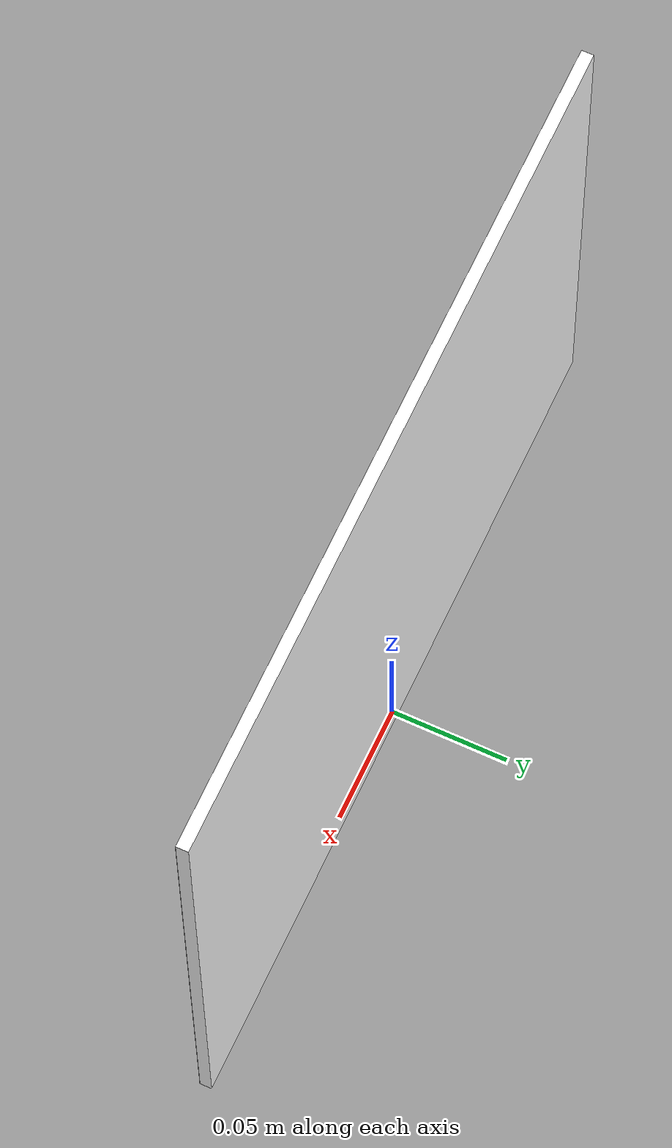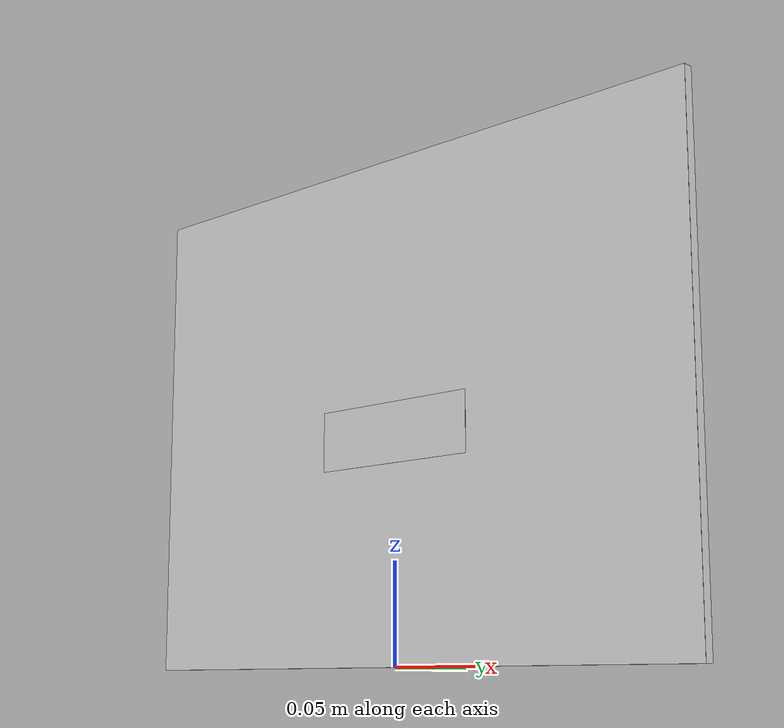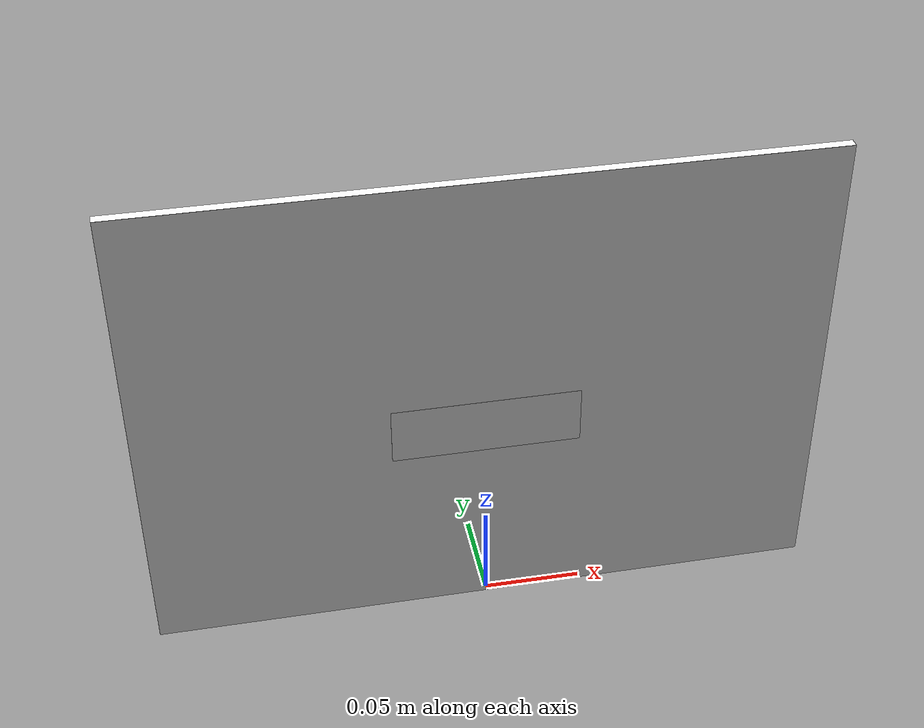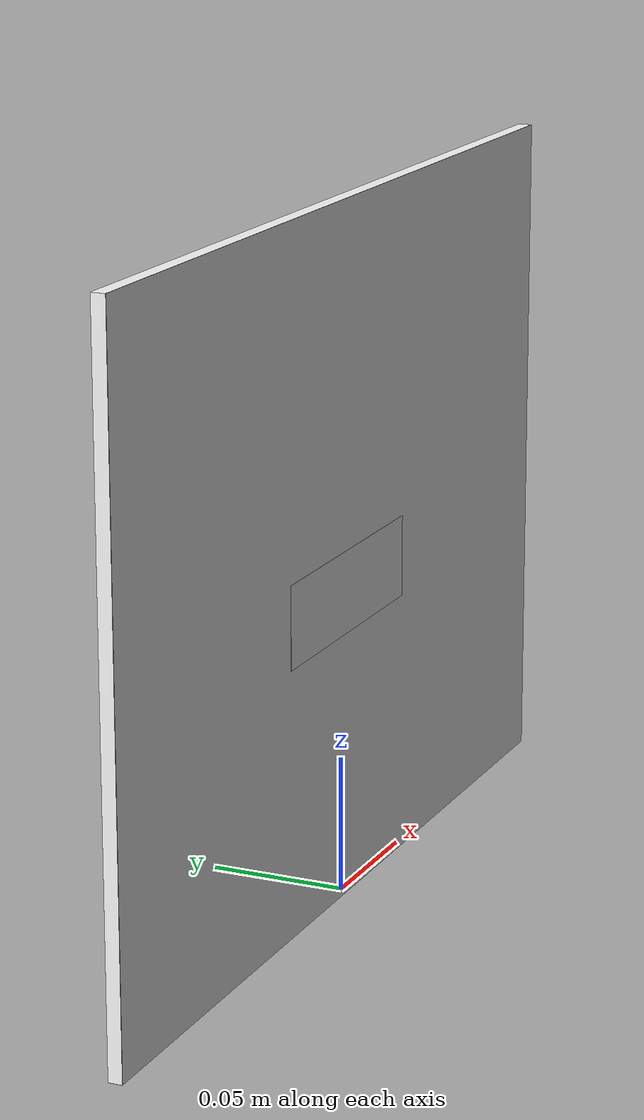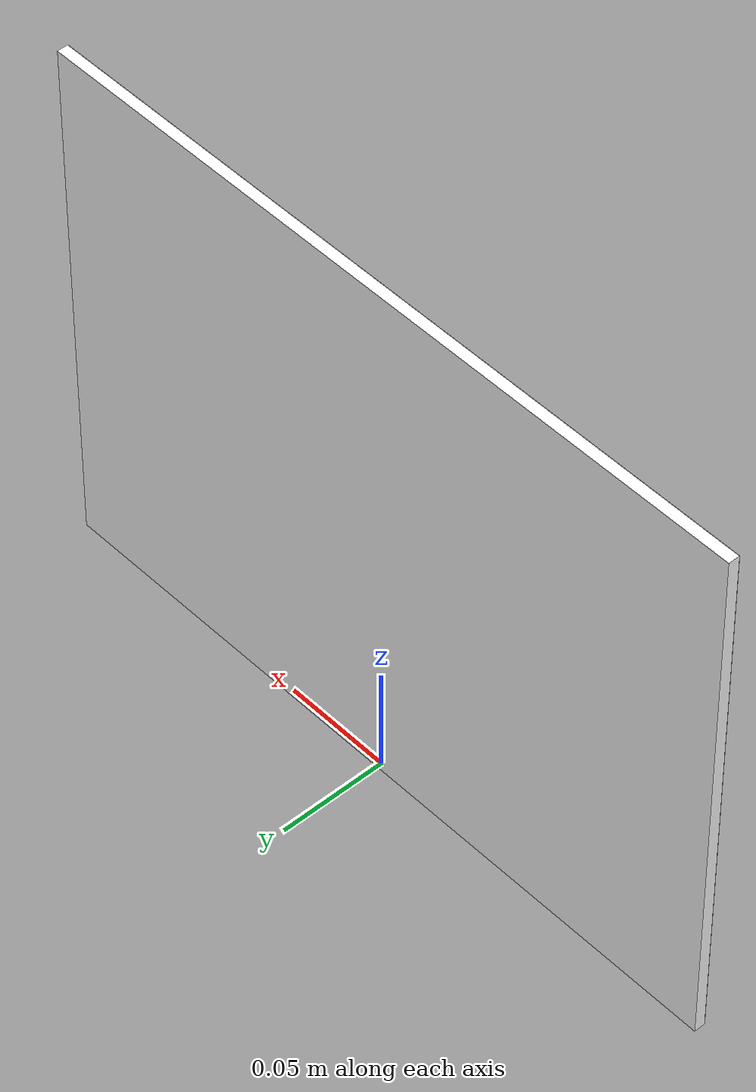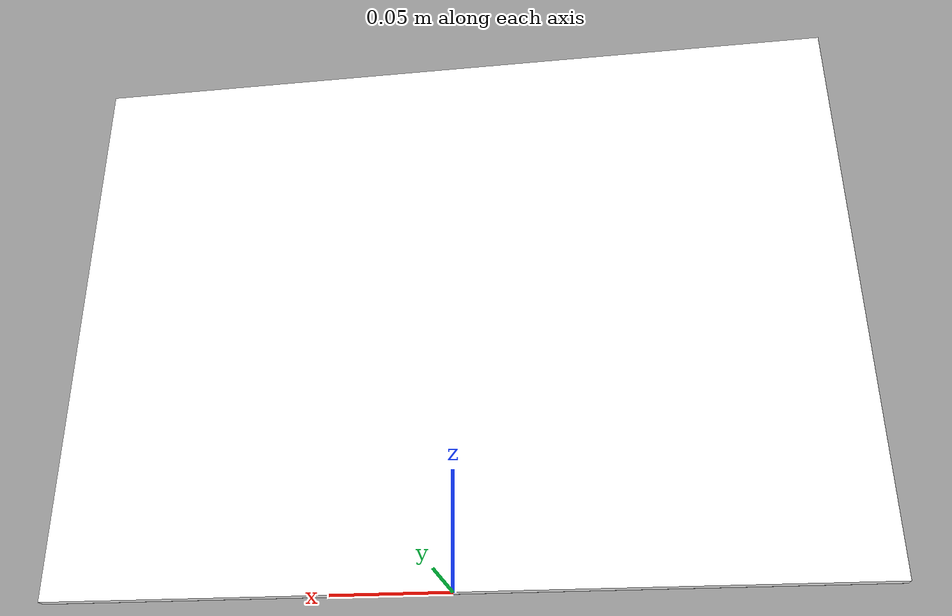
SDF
<?xml version="1.0"?>
<sdf version="1.7">
  <model name="car_standee_plate_3">
    <static>true</static>
    <link name="car_board">
      <visual name="background_board"><pose>0 0 0.125 0 0 0</pose><geometry><box><size>0.345 0.005 0.25</size></box></geometry><material><ambient>1 1 1 1</ambient><diffuse>1 1 1 1</diffuse></material></visual>
      <visual name="car_image_front"><pose>0 -0.00255 0.125 0 0 0</pose><geometry><box><size>0.345 0.0001 0.25</size></box></geometry><material><script><uri>file://materials/scripts</uri><uri>file://materials/textures</uri><name>CarStandee/Background</name></script></material></visual>
      <visual name="license_plate_front"><pose>0 -0.00265 0.112 0 0 0</pose><geometry><box><size>0.095 0.0001 0.03</size></box></geometry><material><script><uri>file://materials/scripts</uri><uri>file://materials/textures</uri><name>CarStandee/Plate3</name></script></material></visual>
      <collision name="collision"><pose>0 0 0.125 0 0 0</pose><geometry><box><size>0.345 0.005 0.25</size></box></geometry></collision>
    </link>
  </model>
</sdf>
